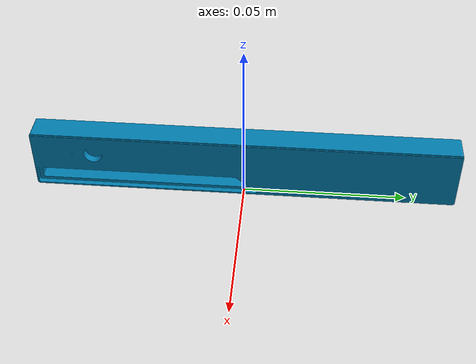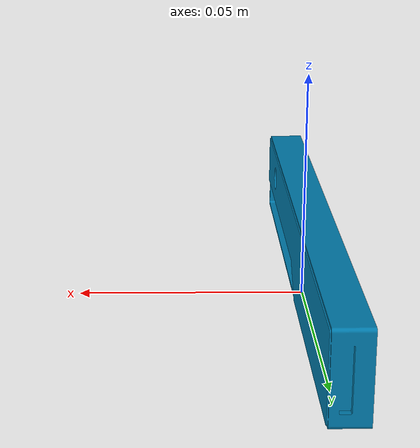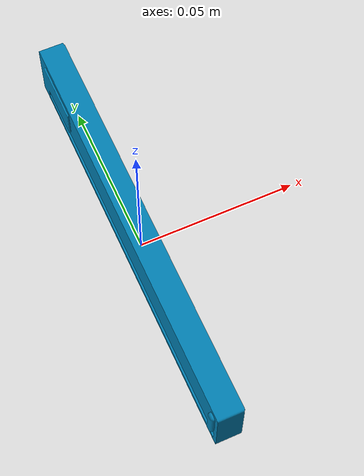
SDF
<?xml version='1.0'?>
<sdf version='1.5'>
  <model name='Intel_R200'>
    <link name='link_1'>
      <pose frame=''>-0.007 -0.065 -0 1.5708 -0 1.5708</pose>
      <inertial>
        <mass>0.035</mass>
        <pose frame=''>0.065 0.01 0.0035 0 -0 0</pose>
        <inertia>
          <ixx>1e-06</ixx>
          <ixy>0</ixy>
          <ixz>0</ixz>
          <iyy>1e-06</iyy>
          <iyz>0</iyz>
          <izz>1e-06</izz>
        </inertia>
      </inertial>
      <self_collide>0</self_collide>
      <kinematic>0</kinematic>
      <visual name='visual'>
        <pose frame=''>0 0 0 0 -0 0</pose>
        <geometry>
          <mesh>
            <uri>model://Intel_R200/Intel_RealSense_R200.STL</uri>
            <scale>1 1 1</scale>
          </mesh>
        </geometry>
        <material>
          <lighting>1</lighting>
          <script>
            <uri>file://media/materials/scripts/gazebo.material</uri>
            <name>Gazebo/Grey</name>
          </script>
          <ambient>0 0.2 0.3 1</ambient>
          <diffuse>0 0.5 0.7 1</diffuse>
          <specular>0 0.005 0.01 1</specular>
          <emissive>0 0 0 1</emissive>
          <shader type='vertex'>
            <normal_map>__default__</normal_map>
          </shader>
        </material>
        <cast_shadows>1</cast_shadows>
        <transparency>0</transparency>
      </visual>
      <collision name='collision'>
        <laser_retro>0</laser_retro>
        <max_contacts>10</max_contacts>
        <pose frame=''>0 0 0 0 -0 0</pose>
        <geometry>
          <mesh>
            <uri>/home/elikos/Downloads/Intel_RealSense_R200.STL</uri>
          </mesh>
        </geometry>
        <surface>
          <friction>
            <ode>
              <mu>1</mu>
              <mu2>1</mu2>
              <fdir1>0 0 0</fdir1>
              <slip1>0</slip1>
              <slip2>0</slip2>
            </ode>
          </friction>
          <bounce>
            <restitution_coefficient>0</restitution_coefficient>
            <threshold>1e+06</threshold>
          </bounce>
          <contact>
            <collide_without_contact>0</collide_without_contact>
            <collide_without_contact_bitmask>1</collide_without_contact_bitmask>
            <collide_bitmask>1</collide_bitmask>
            <ode>
              <soft_cfm>0</soft_cfm>
              <soft_erp>0.2</soft_erp>
              <kp>1e+13</kp>
              <kd>1</kd>
              <max_vel>0.01</max_vel>
              <min_depth>0</min_depth>
            </ode>
            <bullet>
              <split_impulse>1</split_impulse>
              <split_impulse_penetration_threshold>-0.01</split_impulse_penetration_threshold>
              <soft_cfm>0</soft_cfm>
              <soft_erp>0.2</soft_erp>
              <kp>1e+13</kp>
              <kd>1</kd>
            </bullet>
          </contact>
        </surface>
      </collision>
    </link>
    <link name='link_0'>
      <pose frame=''>-0 -0.045 0.012 0 0 0</pose>
      <inertial>
        <mass>1e-06</mass>
        <pose frame=''>0 0 0 0 -0 0</pose>
        <inertia>
          <ixx>1e-06</ixx>
          <ixy>0</ixy>
          <ixz>0</ixz>
          <iyy>1e-06</iyy>
          <iyz>0</iyz>
          <izz>1e-06</izz>
        </inertia>
      </inertial>
      <sensor name='r200_front' type='depth'>
        <update_rate>30</update_rate>
        <camera name='r200_front'>
          <horizontal_fov>1.39626</horizontal_fov>
          <image>
            <width>640</width>
            <height>480</height>
            <format>R8G8B8</format>
          </image>
          <clip>
            <near>0.02</near>
            <far>300</far>
          </clip>
          <noise>
            <type>gaussian</type>
            <mean>0</mean>
            <stddev>0.007</stddev>
          </noise>
        </camera>
        <plugin name='r200_controller' filename='libgazebo_ros_openni_kinect.so'>
          <baseline>0.2</baseline>
          <alwaysOn>true</alwaysOn>
          <updateRate>0</updateRate>
          <cameraName>r200_front</cameraName>
          <imageTopicName>/r200_front/image_raw</imageTopicName>
          <cameraInfoTopicName>/r200_front/camera_info</cameraInfoTopicName>
          <depthImageTopicName>/r200_front/depth/image_raw</depthImageTopicName>
          <depthImageCameraInfoTopicName>/r200_front/depth/camera_info</depthImageCameraInfoTopicName>
          <pointCloudTopicName>/r200_front/depth/points</pointCloudTopicName>
          <frameName>r200_front</frameName>
          <pointCloudCutoff>0.5</pointCloudCutoff>
          <pointCloudCutoffMax>3.0</pointCloudCutoffMax>
          <distortionK1>0.0</distortionK1>
          <distortionK2>0.0</distortionK2>
          <distortionK3>0.0</distortionK3>
          <distortionT1>0.0</distortionT1>
          <distortionT2>0.0</distortionT2>
          <CxPrime>0</CxPrime>
          <Cx>0</Cx>
          <Cy>0</Cy>
          <focalLength>0</focalLength>
          <hackBaseline>0</hackBaseline>
        </plugin>
      </sensor>
    </link>
    <joint name='link_0_JOINT_0' type='fixed'>
      <parent>link_0</parent>
      <child>link_1</child>
      <pose frame=''>0 0 0 0 -0 0</pose>
      <physics>
        <ode>
          <cfm>0</cfm>
          <bounce>0</bounce>
          <velocity>0</velocity>
          <fudge_factor>0</fudge_factor>
          <limit>
            <cfm>0</cfm>
            <erp>0.2</erp>
          </limit>
          <suspension>
            <cfm>0</cfm>
            <erp>0.2</erp>
          </suspension>
        </ode>
      </physics>
    </joint>
    <static>0</static>
    <allow_auto_disable>1</allow_auto_disable>
  </model>
</sdf>
